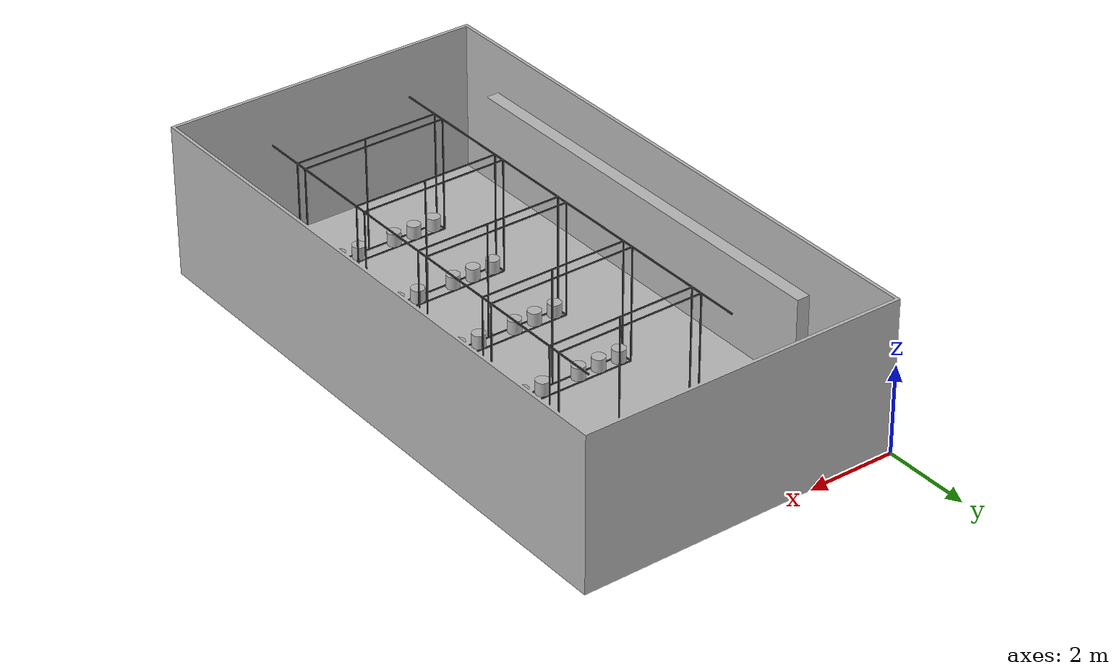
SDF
<?xml version="1.0"?>
<sdf version="1.5">
    <model name="greenhouse-textured">
      <static>true</static>
      <link name="body">
        <visual name="visual_walls">
          <geometry>
            <mesh><uri>model://greenhouse-textured/meshes/greenhouse-walls.dae</uri></mesh>
          </geometry>
          <material>
            <script>
              <uri>model://greenhouse-textured/materials/scripts/</uri>
              <uri>model://greenhouse-textured/materials/textures/</uri>
              <name>Greenhouse/Wall</name>
            </script>
          </material>
        </visual>
        <visual name="visual_pots">
          <geometry>
            <mesh><uri>model://greenhouse-textured/meshes/greenhouse-pots.dae</uri></mesh>
          </geometry>
          <material>
            <script>
              <uri>model://greenhouse-textured/materials/scripts/</uri>
              <uri>model://greenhouse-textured/materials/textures/</uri>
              <name>Greenhouse/Pot</name>
            </script>
          </material>
        </visual>
        <visual name="visual_scaffold">
          <geometry>
            <mesh><uri>model://greenhouse-textured/meshes/greenhouse-scaffold.dae</uri></mesh>
          </geometry>
          <material>
            <script>
              <name>Gazebo/DarkGrey</name>
            </script>
          </material>
        </visual>
        <visual name="visual_table">
          <geometry>
            <mesh><uri>model://greenhouse-textured/meshes/greenhouse-table.dae</uri></mesh>
          </geometry>
          <material>
            <script>
              <uri>model://greenhouse-textured/materials/scripts/</uri>
              <uri>model://greenhouse-textured/materials/textures/</uri>
              <name>Greenhouse/Table</name>
            </script>
          </material>
        </visual>
        <collision name='collision_walls'>
          <geometry>
            <mesh><uri>model://greenhouse-textured/meshes/greenhouse-walls.dae</uri></mesh>
          </geometry>
        </collision>
        <collision name='collision_pots'>
          <geometry>
            <mesh><uri>model://greenhouse-textured/meshes/greenhouse-pots.dae</uri></mesh>
          </geometry>
        </collision>
        <collision name='collision_table'>
          <geometry>
            <mesh><uri>model://greenhouse-textured/meshes/greenhouse-table.dae</uri></mesh>
          </geometry>
        </collision>
      </link>
    </model>
</sdf>
